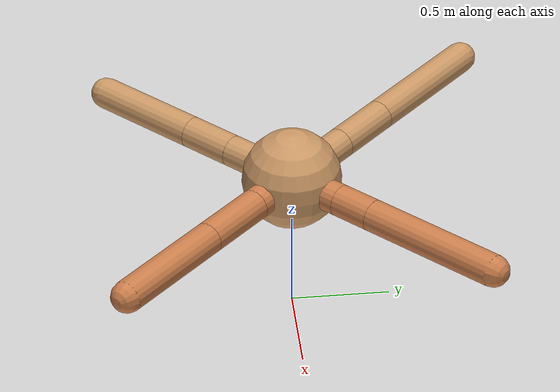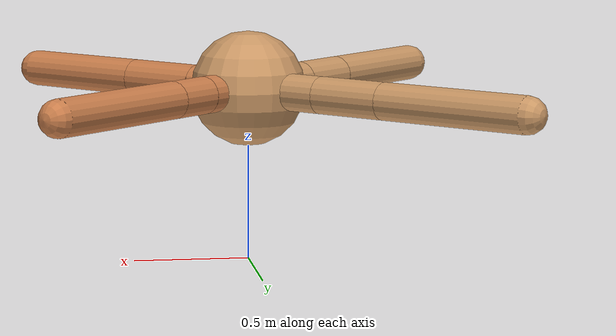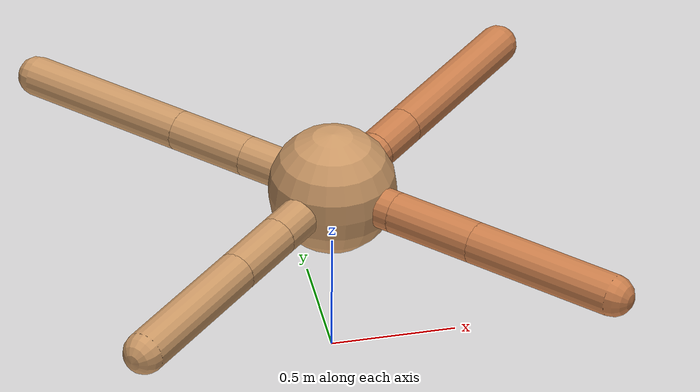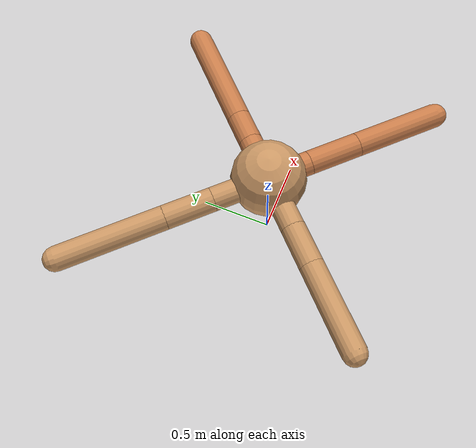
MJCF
<mujoco model="ant">
  <compiler angle="degree" coordinate="local" inertiafromgeom="true" />
  <option integrator="RK4" timestep="0.01" />
  <custom>
    <numeric data="0.0 0.0 0.55 1.0 0.0 0.0 0.0 0.0 1.0 0.0 -1.0 0.0 -1.0 0.0 1.0" name="init_qpos" />
  </custom>
  <default>
    <joint armature="1" damping="1" limited="true" />
    <geom conaffinity="0" condim="3" density="5.0" friction="1.5 0.1 0.1" margin="0.01" rgba="0.8 0.6 0.4 1" />
  </default>
  <worldbody>
    <body name="torso" pos="0 0 0.75">
      <geom name="torso_geom" pos="0 0 0" size="0.25" type="sphere" />

      <body name="front_left_leg" pos="0 0 0">
        <geom fromto="0.0 0.0 0.0 0.2140469498291534 0.2140469498291534 0.0" name="aux_1_geom" size="0.08" type="capsule" rgba=".8 .5 .3 1" />
        <body name="aux_1" pos="0.2140469498291534 0.2140469498291534 0.0">
          <joint axis="0 0 1" name="hip_1" pos="0.0 0.0 0.0" range="-40 40" type="hinge" />
          <geom fromto="0.0 0.0 0.0 0.1422622744727072 0.1422622744727072 0.0" name="left_leg_geom" size="0.08" type="capsule" rgba=".8 .5 .3 1" />
          <body pos="0.1422622744727072 0.1422622744727072 0.0" name="front_left_foot">
            <joint axis="-1 1 0" name="ankle_1" pos="0.0 0.0 0.0" range="30 100" type="hinge" />
            <geom fromto="0.0 0.0 0.0 0.5067552090785302 0.5067552090785302 0.0" name="left_ankle_geom" size="0.08" type="capsule" rgba=".8 .5 .3 1" />
          </body>
        </body>
      </body>
      <body name="front_right_leg" pos="0 0 0">
        <geom fromto="0.0 0.0 0.0 -0.2761842707248387 0.2761842707248387 0.0" name="aux_2_geom" size="0.08" type="capsule" />
        <body name="aux_2" pos="-0.2761842707248387 0.2761842707248387 0.0">
          <joint axis="0 0 1" name="hip_2" pos="0.0 0.0 0.0" range="-40 40" type="hinge" />
          <geom fromto="0.0 0.0 0.0 -0.2292880860683345 0.2292880860683345 0.0" name="right_leg_geom" size="0.08" type="capsule" />
          <body pos="-0.2292880860683345 0.2292880860683345 0.0" name="front_right_foot">
            <joint axis="1 1 0" name="ankle_2" pos="0.0 0.0 0.0" range="-100 -30" type="hinge" />
            <geom fromto="0.0 0.0 0.0 -0.49703743382851306 0.49703743382851306 0.0" name="right_ankle_geom" size="0.08" type="capsule" />
          </body>
        </body>
      </body>
      <body name="left_back_leg" pos="0 0 0">
        <geom fromto="0.0 0.0 0.0 -0.2694338482670501 -0.2694338482670501 0.0" name="aux_3_geom" size="0.08" type="capsule" />
        <body name="aux_3" pos="-0.2694338482670501 -0.2694338482670501 0.0">
          <joint axis="0 0 1" name="hip_3" pos="0.0 0.0 0.0" range="-40 40" type="hinge" />
          <geom fromto="0.0 0.0 0.0 -0.18936801535778336 -0.18936801535778336 0.0" name="back_leg_geom" size="0.08" type="capsule" />
          <body pos="-0.18936801535778336 -0.18936801535778336 0.0" name="left_back_foot">
            <joint axis="-1 1 0" name="ankle_3" pos="0.0 0.0 0.0" range="-100 -30" type="hinge" />
            <geom fromto="0.0 0.0 0.0 -0.4074419630545493 -0.4074419630545493 0.0" name="third_ankle_geom" size="0.08" type="capsule" />
          </body>
        </body>
      </body>
      <body name="right_back_leg" pos="0 0 0">
        <geom fromto="0.0 0.0 0.0 0.20469117195952188 -0.20469117195952188 0.0" name="aux_4_geom" size="0.08" type="capsule" rgba=".8 .5 .3 1" />
        <body name="aux_4" pos="0.20469117195952188 -0.20469117195952188 0.0">
          <joint axis="0 0 1" name="hip_4" pos="0.0 0.0 0.0" range="-40 40" type="hinge" />
          <geom fromto="0.0 0.0 0.0 0.24760498393256336 -0.24760498393256336 0.0" name="rightback_leg_geom" size="0.08" type="capsule" rgba=".8 .5 .3 1" />
          <body pos="0.24760498393256336 -0.24760498393256336 0.0" name="right_back_foot">
            <joint axis="1 1 0" name="ankle_4" pos="0.0 0.0 0.0" range="30 100" type="hinge" />
            <geom fromto="0.0 0.0 0.0 0.4182747385130606 -0.4182747385130606 0.0" name="fourth_ankle_geom" size="0.08" type="capsule" rgba=".8 .5 .3 1" />
          </body>
        </body>
      </body>
    </body>
  </worldbody>
  <actuator>
    <motor ctrllimited="true" ctrlrange="-1.0 1.0" joint="hip_4" gear="150" />
    <motor ctrllimited="true" ctrlrange="-1.0 1.0" joint="ankle_4" gear="150" />
    <motor ctrllimited="true" ctrlrange="-1.0 1.0" joint="hip_1" gear="150" />
    <motor ctrllimited="true" ctrlrange="-1.0 1.0" joint="ankle_1" gear="150" />
    <motor ctrllimited="true" ctrlrange="-1.0 1.0" joint="hip_2" gear="150" />
    <motor ctrllimited="true" ctrlrange="-1.0 1.0" joint="ankle_2" gear="150" />
    <motor ctrllimited="true" ctrlrange="-1.0 1.0" joint="hip_3" gear="150" />
    <motor ctrllimited="true" ctrlrange="-1.0 1.0" joint="ankle_3" gear="150" />
  </actuator>
</mujoco>
